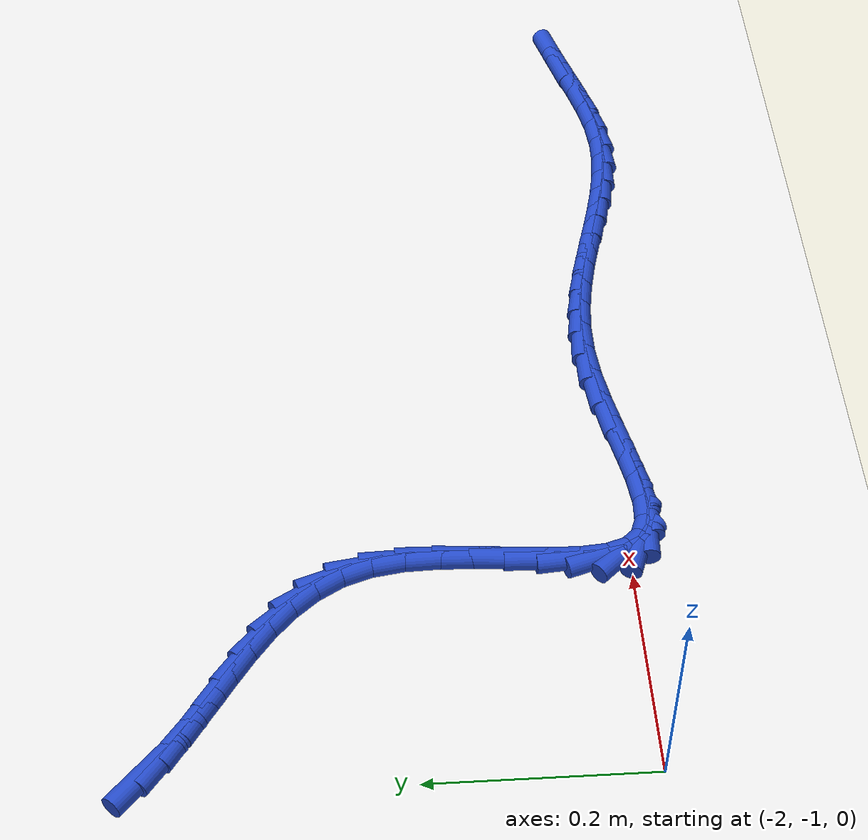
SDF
<sdf version="1.6">
 <world name="default">
  <model name="ground_plane">
   <static>1</static>
   <link name="link">
    <collision name="collision">
     <geometry><plane><normal>0 0 1</normal><size>100 100</size></plane></geometry>
     <surface><friction><ode><mu>100</mu><mu2>50</mu2></ode></friction></surface>
    </collision>
    <visual name="visual">
     <cast_shadows>0</cast_shadows>
     <geometry><plane><normal>0 0 1</normal><size>100 100</size></plane></geometry>
     <material>
      <script><uri>file://media/materials/scripts/gazebo.material</uri><name>Gazebo/WhiteGlow</name></script>
     </material>
    </visual>
   </link>
  </model>
  <model name="line">
   <link name="link_150">
    <pose>-1.9833427071040988 -0.5785154381039677 0.01 0 1.57 -0.7413531187494494</pose>
    <collision name="collision">
     <geometry><cylinder><radius>0.01</radius><length>0.08</length></cylinder></geometry>
    </collision>
    <visual name="visual">
     <material>
      <script><name>Gazebo/Blue</name><uri>file://media/materials/scripts/gazebo.material</uri></script>
     </material>
     <geometry><cylinder><radius>0.01</radius><length>0.08</length></cylinder></geometry>
    </visual>
   </link>
   <link name="link_151">
    <pose>-1.9638853894812487 -0.5963300495449829 0.01 0 1.57 -0.6501333410807195</pose>
    <collision name="collision">
     <geometry><cylinder><radius>0.01</radius><length>0.08</length></cylinder></geometry>
    </collision>
    <visual name="visual">
     <material>
      <script><name>Gazebo/Blue</name><uri>file://media/materials/scripts/gazebo.material</uri></script>
     </material>
     <geometry><cylinder><radius>0.01</radius><length>0.08</length></cylinder></geometry>
    </visual>
   </link>
   <link name="link_152">
    <pose>-1.9419056887316513 -0.6130437397514276 0.01 0 1.57 -0.5999145148150106</pose>
    <collision name="collision">
     <geometry><cylinder><radius>0.01</radius><length>0.08</length></cylinder></geometry>
    </collision>
    <visual name="visual">
     <material>
      <script><name>Gazebo/Blue</name><uri>file://media/materials/scripts/gazebo.material</uri></script>
     </material>
     <geometry><cylinder><radius>0.01</radius><length>0.08</length></cylinder></geometry>
    </visual>
   </link>
   <link name="link_153">
    <pose>-1.9183110533866805 -0.6291827374124833 0.01 0 1.57 -0.5848372365135824</pose>
    <collision name="collision">
     <geometry><cylinder><radius>0.01</radius><length>0.08</length></cylinder></geometry>
    </collision>
    <visual name="visual">
     <material>
      <script><name>Gazebo/Blue</name><uri>file://media/materials/scripts/gazebo.material</uri></script>
     </material>
     <geometry><cylinder><radius>0.01</radius><length>0.08</length></cylinder></geometry>
    </visual>
   </link>
   <link name="link_154">
    <pose>-1.8940089319777096 -0.6452732712173324 0.01 0 1.57 -0.6022328102567881</pose>
    <collision name="collision">
     <geometry><cylinder><radius>0.01</radius><length>0.08</length></cylinder></geometry>
    </collision>
    <visual name="visual">
     <material>
      <script><name>Gazebo/Blue</name><uri>file://media/materials/scripts/gazebo.material</uri></script>
     </material>
     <geometry><cylinder><radius>0.01</radius><length>0.08</length></cylinder></geometry>
    </visual>
   </link>
   <link name="link_155">
    <pose>-1.8699067730361136 -0.6618415698551565 0.01 0 1.57 -0.6525192615001995</pose>
    <collision name="collision">
     <geometry><cylinder><radius>0.01</radius><length>0.08</length></cylinder></geometry>
    </collision>
    <visual name="visual">
     <material>
      <script><name>Gazebo/Blue</name><uri>file://media/materials/scripts/gazebo.material</uri></script>
     </material>
     <geometry><cylinder><radius>0.01</radius><length>0.08</length></cylinder></geometry>
    </visual>
   </link>
   <link name="link_156">
    <pose>-1.8469120250932654 -0.6794138620151384 0.01 0 1.57 -0.7385945073422924</pose>
    <collision name="collision">
     <geometry><cylinder><radius>0.01</radius><length>0.08</length></cylinder></geometry>
    </collision>
    <visual name="visual">
     <material>
      <script><name>Gazebo/Blue</name><uri>file://media/materials/scripts/gazebo.material</uri></script>
     </material>
     <geometry><cylinder><radius>0.01</radius><length>0.08</length></cylinder></geometry>
    </visual>
   </link>
   <link name="link_157">
    <pose>-1.8259321366805392 -0.6985163763864586 0.01 0 1.57 -0.8643174932833656</pose>
    <collision name="collision">
     <geometry><cylinder><radius>0.01</radius><length>0.08</length></cylinder></geometry>
    </collision>
    <visual name="visual">
     <material>
      <script><name>Gazebo/Blue</name><uri>file://media/materials/scripts/gazebo.material</uri></script>
     </material>
     <geometry><cylinder><radius>0.01</radius><length>0.08</length></cylinder></geometry>
    </visual>
   </link>
   <link name="link_158">
    <pose>-1.8078745563293093 -0.7196753416583 0.01 0 1.57 -1.030908550194694</pose>
    <collision name="collision">
     <geometry><cylinder><radius>0.01</radius><length>0.08</length></cylinder></geometry>
    </collision>
    <visual name="visual">
     <material>
      <script><name>Gazebo/Blue</name><uri>file://media/materials/scripts/gazebo.material</uri></script>
     </material>
     <geometry><cylinder><radius>0.01</radius><length>0.08</length></cylinder></geometry>
    </visual>
   </link>
   <link name="link_159">
    <pose>-1.793646732570949 -0.7434169865198443 0.01 0 1.57 -1.2305305816867622</pose>
    <collision name="collision">
     <geometry><cylinder><radius>0.01</radius><length>0.08</length></cylinder></geometry>
    </collision>
    <visual name="visual">
     <material>
      <script><name>Gazebo/Blue</name><uri>file://media/materials/scripts/gazebo.material</uri></script>
     </material>
     <geometry><cylinder><radius>0.01</radius><length>0.08</length></cylinder></geometry>
    </visual>
   </link>
   <link name="link_160">
    <pose>-1.784143972890544 -0.770258218089805 0.01 0 1.57 -1.4153325492245838</pose>
    <collision name="collision">
     <geometry><cylinder><radius>0.01</radius><length>0.08</length></cylinder></geometry>
    </collision>
    <visual name="visual">
     <material>
      <script><name>Gazebo/Blue</name><uri>file://media/materials/scripts/gazebo.material</uri></script>
     </material>
     <geometry><cylinder><radius>0.01</radius><length>0.08</length></cylinder></geometry>
    </visual>
   </link>
   <link name="link_161">
    <pose>-1.779466102070128 -0.800105193153138 0.01 0 1.57 -1.5385144693333508</pose>
    <collision name="collision">
     <geometry><cylinder><radius>0.01</radius><length>0.08</length></cylinder></geometry>
    </collision>
    <visual name="visual">
     <material>
      <script><name>Gazebo/Blue</name><uri>file://media/materials/scripts/gazebo.material</uri></script>
     </material>
     <geometry><cylinder><radius>0.01</radius><length>0.08</length></cylinder></geometry>
    </visual>
   </link>
   <link name="link_162">
    <pose>-1.7784397836730486 -0.8318865693785292 0.01 0 1.57 1.5297357585721938</pose>
    <collision name="collision">
     <geometry><cylinder><radius>0.01</radius><length>0.08</length></cylinder></geometry>
    </collision>
    <visual name="visual">
     <material>
      <script><name>Gazebo/Blue</name><uri>file://media/materials/scripts/gazebo.material</uri></script>
     </material>
     <geometry><cylinder><radius>0.01</radius><length>0.08</length></cylinder></geometry>
    </visual>
   </link>
   <link name="link_163">
    <pose>-1.7797773295360932 -0.8644432082388526 0.01 0 1.57 1.4959128423697259</pose>
    <collision name="collision">
     <geometry><cylinder><radius>0.01</radius><length>0.08</length></cylinder></geometry>
    </collision>
    <visual name="visual">
     <material>
      <script><name>Gazebo/Blue</name><uri>file://media/materials/scripts/gazebo.material</uri></script>
     </material>
     <geometry><cylinder><radius>0.01</radius><length>0.08</length></cylinder></geometry>
    </visual>
   </link>
   <link name="link_164">
    <pose>-1.782191051496047 -0.8966159712069801 0.01 0 1.57 1.499022084228167</pose>
    <collision name="collision">
     <geometry><cylinder><radius>0.01</radius><length>0.08</length></cylinder></geometry>
    </collision>
    <visual name="visual">
     <material>
      <script><name>Gazebo/Blue</name><uri>file://media/materials/scripts/gazebo.material</uri></script>
     </material>
     <geometry><cylinder><radius>0.01</radius><length>0.08</length></cylinder></geometry>
    </visual>
   </link>
   <link name="link_165">
    <pose>-1.784393261389697 -0.9272457197557863 0.01 0 1.57 1.5456290606564187</pose>
    <collision name="collision">
     <geometry><cylinder><radius>0.01</radius><length>0.08</length></cylinder></geometry>
    </collision>
    <visual name="visual">
     <material>
      <script><name>Gazebo/Blue</name><uri>file://media/materials/scripts/gazebo.material</uri></script>
     </material>
     <geometry><cylinder><radius>0.01</radius><length>0.08</length></cylinder></geometry>
    </visual>
   </link>
   <link name="link_166">
    <pose>-1.7850962710538285 -0.9551733153581421 0.01 0 1.57 -1.4844227005700943</pose>
    <collision name="collision">
     <geometry><cylinder><radius>0.01</radius><length>0.08</length></cylinder></geometry>
    </collision>
    <visual name="visual">
     <material>
      <script><name>Gazebo/Blue</name><uri>file://media/materials/scripts/gazebo.material</uri></script>
     </material>
     <geometry><cylinder><radius>0.01</radius><length>0.08</length></cylinder></geometry>
    </visual>
   </link>
   <link name="link_167">
    <pose>-1.7830123923252286 -0.9792396194869214 0.01 0 1.57 -1.2580588557807748</pose>
    <collision name="collision">
     <geometry><cylinder><radius>0.01</radius><length>0.08</length></cylinder></geometry>
    </collision>
    <visual name="visual">
     <material>
      <script><name>Gazebo/Blue</name><uri>file://media/materials/scripts/gazebo.material</uri></script>
     </material>
     <geometry><cylinder><radius>0.01</radius><length>0.08</length></cylinder></geometry>
    </visual>
   </link>
   <link name="link_168">
    <pose>-1.7768539370406833 -0.9982854936149971 0.01 0 1.57 -0.8412746697423668</pose>
    <collision name="collision">
     <geometry><cylinder><radius>0.01</radius><length>0.08</length></cylinder></geometry>
    </collision>
    <visual name="visual">
     <material>
      <script><name>Gazebo/Blue</name><uri>file://media/materials/scripts/gazebo.material</uri></script>
     </material>
     <geometry><cylinder><radius>0.01</radius><length>0.08</length></cylinder></geometry>
    </visual>
   </link>
   <link name="link_169">
    <pose>-1.7653420982088852 -1.0111614576471224 0.01 0 1.57 -0.35277934183972287</pose>
    <collision name="collision">
     <geometry><cylinder><radius>0.01</radius><length>0.08</length></cylinder></geometry>
    </collision>
    <visual name="visual">
     <material>
      <script><name>Gazebo/Blue</name><uri>file://media/materials/scripts/gazebo.material</uri></script>
     </material>
     <geometry><cylinder><radius>0.01</radius><length>0.08</length></cylinder></geometry>
    </visual>
   </link>
   <link name="link_170">
    <pose>-1.747970014023895 -1.0175575355609774 0.01 0 1.57 -0.0484057072217163</pose>
    <collision name="collision">
     <geometry><cylinder><radius>0.01</radius><length>0.08</length></cylinder></geometry>
    </collision>
    <visual name="visual">
     <material>
      <script><name>Gazebo/Blue</name><uri>file://media/materials/scripts/gazebo.material</uri></script>
     </material>
     <geometry><cylinder><radius>0.01</radius><length>0.08</length></cylinder></geometry>
    </visual>
   </link>
   <link name="link_171">
    <pose>-1.7255898434028476 -1.0186417104611856 0.01 0 1.57 0.10977199021016679</pose>
    <collision name="collision">
     <geometry><cylinder><radius>0.01</radius><length>0.08</length></cylinder></geometry>
    </collision>
    <visual name="visual">
     <material>
      <script><name>Gazebo/Blue</name><uri>file://media/materials/scripts/gazebo.material</uri></script>
     </material>
     <geometry><cylinder><radius>0.01</radius><length>0.08</length></cylinder></geometry>
    </visual>
   </link>
   <link name="link_172">
    <pose>-1.6991919500503465 -1.0157322656086227 0.01 0 1.57 0.18756459243870122</pose>
    <collision name="collision">
     <geometry><cylinder><radius>0.01</radius><length>0.08</length></cylinder></geometry>
    </collision>
    <visual name="visual">
     <material>
      <script><name>Gazebo/Blue</name><uri>file://media/materials/scripts/gazebo.material</uri></script>
     </material>
     <geometry><cylinder><radius>0.01</radius><length>0.08</length></cylinder></geometry>
    </visual>
   </link>
   <link name="link_173">
    <pose>-1.6697666976709968 -1.0101474842641638 0.01 0 1.57 0.21716080554000347</pose>
    <collision name="collision">
     <geometry><cylinder><radius>0.01</radius><length>0.08</length></cylinder></geometry>
    </collision>
    <visual name="visual">
     <material>
      <script><name>Gazebo/Blue</name><uri>file://media/materials/scripts/gazebo.material</uri></script>
     </material>
     <geometry><cylinder><radius>0.01</radius><length>0.08</length></cylinder></geometry>
    </visual>
   </link>
   <link name="link_174">
    <pose>-1.6383044499694028 -1.003205649688684 0.01 0 1.57 0.21151727783618804</pose>
    <collision name="collision">
     <geometry><cylinder><radius>0.01</radius><length>0.08</length></cylinder></geometry>
    </collision>
    <visual name="visual">
     <material>
      <script><name>Gazebo/Blue</name><uri>file://media/materials/scripts/gazebo.material</uri></script>
     </material>
     <geometry><cylinder><radius>0.01</radius><length>0.08</length></cylinder></geometry>
    </visual>
   </link>
   <link name="link_175">
    <pose>-1.6057955706501679 -0.9962250451430589 0.01 0 1.57 0.1733109317684859</pose>
    <collision name="collision">
     <geometry><cylinder><radius>0.01</radius><length>0.08</length></cylinder></geometry>
    </collision>
    <visual name="visual">
     <material>
      <script><name>Gazebo/Blue</name><uri>file://media/materials/scripts/gazebo.material</uri></script>
     </material>
     <geometry><cylinder><radius>0.01</radius><length>0.08</length></cylinder></geometry>
    </visual>
   </link>
   <link name="link_176">
    <pose>-1.5732304234178955 -0.990523953888163 0.01 0 1.57 0.09845283028595676</pose>
    <collision name="collision">
     <geometry><cylinder><radius>0.01</radius><length>0.08</length></cylinder></geometry>
    </collision>
    <visual name="visual">
     <material>
      <script><name>Gazebo/Blue</name><uri>file://media/materials/scripts/gazebo.material</uri></script>
     </material>
     <geometry><cylinder><radius>0.01</radius><length>0.08</length></cylinder></geometry>
    </visual>
   </link>
   <link name="link_177">
    <pose>-1.5415852530074199 -0.9873982917920716 0.01 0 1.57 0.0016749247247755613</pose>
    <collision name="collision">
     <geometry><cylinder><radius>0.01</radius><length>0.08</length></cylinder></geometry>
    </collision>
    <visual name="visual">
     <material>
      <script><name>Gazebo/Blue</name><uri>file://media/materials/scripts/gazebo.material</uri></script>
     </material>
     <geometry><cylinder><radius>0.01</radius><length>0.08</length></cylinder></geometry>
    </visual>
   </link>
   <link name="link_178">
    <pose>-1.511333622751213 -0.9873476225412087 0.01 0 1.57 -0.086980061427592</pose>
    <collision name="collision">
     <geometry><cylinder><radius>0.01</radius><length>0.08</length></cylinder></geometry>
    </collision>
    <visual name="visual">
     <material>
      <script><name>Gazebo/Blue</name><uri>file://media/materials/scripts/gazebo.material</uri></script>
     </material>
     <geometry><cylinder><radius>0.01</radius><length>0.08</length></cylinder></geometry>
    </visual>
   </link>
   <link name="link_179">
    <pose>-1.4823216286316852 -0.9898774706735579 0.01 0 1.57 -0.16140350998049807</pose>
    <collision name="collision">
     <geometry><cylinder><radius>0.01</radius><length>0.08</length></cylinder></geometry>
    </collision>
    <visual name="visual">
     <material>
      <script><name>Gazebo/Blue</name><uri>file://media/materials/scripts/gazebo.material</uri></script>
     </material>
     <geometry><cylinder><radius>0.01</radius><length>0.08</length></cylinder></geometry>
    </visual>
   </link>
   <link name="link_180">
    <pose>-1.4543559051870916 -0.9944308455693995 0.01 0 1.57 -0.21848759002456125</pose>
    <collision name="collision">
     <geometry><cylinder><radius>0.01</radius><length>0.08</length></cylinder></geometry>
    </collision>
    <visual name="visual">
     <material>
      <script><name>Gazebo/Blue</name><uri>file://media/materials/scripts/gazebo.material</uri></script>
     </material>
     <geometry><cylinder><radius>0.01</radius><length>0.08</length></cylinder></geometry>
    </visual>
   </link>
   <link name="link_181">
    <pose>-1.4272430869556858 -1.0004507566090137 0.01 0 1.57 -0.2561944332203875</pose>
    <collision name="collision">
     <geometry><cylinder><radius>0.01</radius><length>0.08</length></cylinder></geometry>
    </collision>
    <visual name="visual">
     <material>
      <script><name>Gazebo/Blue</name><uri>file://media/materials/scripts/gazebo.material</uri></script>
     </material>
     <geometry><cylinder><radius>0.01</radius><length>0.08</length></cylinder></geometry>
    </visual>
   </link>
   <link name="link_182">
    <pose>-1.4007898084757255 -1.0073802131726797 0.01 0 1.57 -0.2732093125610809</pose>
    <collision name="collision">
     <geometry><cylinder><radius>0.01</radius><length>0.08</length></cylinder></geometry>
    </collision>
    <visual name="visual">
     <material>
      <script><name>Gazebo/Blue</name><uri>file://media/materials/scripts/gazebo.material</uri></script>
     </material>
     <geometry><cylinder><radius>0.01</radius><length>0.08</length></cylinder></geometry>
    </visual>
   </link>
   <link name="link_183">
    <pose>-1.3748027042854645 -1.0146622246406782 0.01 0 1.57 -0.2685883507546971</pose>
    <collision name="collision">
     <geometry><cylinder><radius>0.01</radius><length>0.08</length></cylinder></geometry>
    </collision>
    <visual name="visual">
     <material>
      <script><name>Gazebo/Blue</name><uri>file://media/materials/scripts/gazebo.material</uri></script>
     </material>
     <geometry><cylinder><radius>0.01</radius><length>0.08</length></cylinder></geometry>
    </visual>
   </link>
   <link name="link_184">
    <pose>-1.349088408923158 -1.0217398003932892 0.01 0 1.57 -0.2415773402445492</pose>
    <collision name="collision">
     <geometry><cylinder><radius>0.01</radius><length>0.08</length></cylinder></geometry>
    </collision>
    <visual name="visual">
     <material>
      <script><name>Gazebo/Blue</name><uri>file://media/materials/scripts/gazebo.material</uri></script>
     </material>
     <geometry><cylinder><radius>0.01</radius><length>0.08</length></cylinder></geometry>
    </visual>
   </link>
   <link name="link_185">
    <pose>-1.323453556927062 -1.0280559498107924 0.01 0 1.57 -0.1917121855102879</pose>
    <collision name="collision">
     <geometry><cylinder><radius>0.01</radius><length>0.08</length></cylinder></geometry>
    </collision>
    <visual name="visual">
     <material>
      <script><name>Gazebo/Blue</name><uri>file://media/materials/scripts/gazebo.material</uri></script>
     </material>
     <geometry><cylinder><radius>0.01</radius><length>0.08</length></cylinder></geometry>
    </visual>
   </link>
   <link name="link_186">
    <pose>-1.2977047828354307 -1.0330536822734682 0.01 0 1.57 -0.11926235824178463</pose>
    <collision name="collision">
     <geometry><cylinder><radius>0.01</radius><length>0.08</length></cylinder></geometry>
    </collision>
    <visual name="visual">
     <material>
      <script><name>Gazebo/Blue</name><uri>file://media/materials/scripts/gazebo.material</uri></script>
     </material>
     <geometry><cylinder><radius>0.01</radius><length>0.08</length></cylinder></geometry>
    </visual>
   </link>
   <link name="link_187">
    <pose>-1.27164872118652 -1.0361760071615964 0.01 0 1.57 -0.025973526787876625</pose>
    <collision name="collision">
     <geometry><cylinder><radius>0.01</radius><length>0.08</length></cylinder></geometry>
    </collision>
    <visual name="visual">
     <material>
      <script><name>Gazebo/Blue</name><uri>file://media/materials/scripts/gazebo.material</uri></script>
     </material>
     <geometry><cylinder><radius>0.01</radius><length>0.08</length></cylinder></geometry>
    </visual>
   </link>
   <link name="link_188">
    <pose>-1.2450920065185835 -1.0368659338554571 0.01 0 1.57 0.08376933533070398</pose>
    <collision name="collision">
     <geometry><cylinder><radius>0.01</radius><length>0.08</length></cylinder></geometry>
    </collision>
    <visual name="visual">
     <material>
      <script><name>Gazebo/Blue</name><uri>file://media/materials/scripts/gazebo.material</uri></script>
     </material>
     <geometry><cylinder><radius>0.01</radius><length>0.08</length></cylinder></geometry>
    </visual>
   </link>
   <link name="link_189">
    <pose>-1.2178448638128239 -1.0345781048541463 0.01 0 1.57 0.1847334676471695</pose>
    <collision name="collision">
     <geometry><cylinder><radius>0.01</radius><length>0.08</length></cylinder></geometry>
    </collision>
    <visual name="visual">
     <material>
      <script><name>Gazebo/Blue</name><uri>file://media/materials/scripts/gazebo.material</uri></script>
     </material>
     <geometry><cylinder><radius>0.01</radius><length>0.08</length></cylinder></geometry>
    </visual>
   </link>
   <link name="link_190">
    <pose>-1.1898992819677612 -1.0293560819848615 0.01 0 1.57 0.2502938984142941</pose>
    <collision name="collision">
     <geometry><cylinder><radius>0.01</radius><length>0.08</length></cylinder></geometry>
    </collision>
    <visual name="visual">
     <material>
      <script><name>Gazebo/Blue</name><uri>file://media/materials/scripts/gazebo.material</uri></script>
     </material>
     <geometry><cylinder><radius>0.01</radius><length>0.08</length></cylinder></geometry>
    </visual>
   </link>
   <link name="link_191">
    <pose>-1.1615111648615664 -1.022098517759359 0.01 0 1.57 0.2837618852648459</pose>
    <collision name="collision">
     <geometry><cylinder><radius>0.01</radius><length>0.08</length></cylinder></geometry>
    </collision>
    <visual name="visual">
     <material>
      <script><name>Gazebo/Blue</name><uri>file://media/materials/scripts/gazebo.material</uri></script>
     </material>
     <geometry><cylinder><radius>0.01</radius><length>0.08</length></cylinder></geometry>
    </visual>
   </link>
   <link name="link_192">
    <pose>-1.132957156677092 -1.013771263759914 0.01 0 1.57 0.28816730563424964</pose>
    <collision name="collision">
     <geometry><cylinder><radius>0.01</radius><length>0.08</length></cylinder></geometry>
    </collision>
    <visual name="visual">
     <material>
      <script><name>Gazebo/Blue</name><uri>file://media/materials/scripts/gazebo.material</uri></script>
     </material>
     <geometry><cylinder><radius>0.01</radius><length>0.08</length></cylinder></geometry>
    </visual>
   </link>
   <link name="link_193">
    <pose>-1.1045139015971905 -1.005340171568804 0.01 0 1.57 0.2635124025254646</pose>
    <collision name="collision">
     <geometry><cylinder><radius>0.01</radius><length>0.08</length></cylinder></geometry>
    </collision>
    <visual name="visual">
     <material>
      <script><name>Gazebo/Blue</name><uri>file://media/materials/scripts/gazebo.material</uri></script>
     </material>
     <geometry><cylinder><radius>0.01</radius><length>0.08</length></cylinder></geometry>
    </visual>
   </link>
  </model>
 </world>
</sdf>
